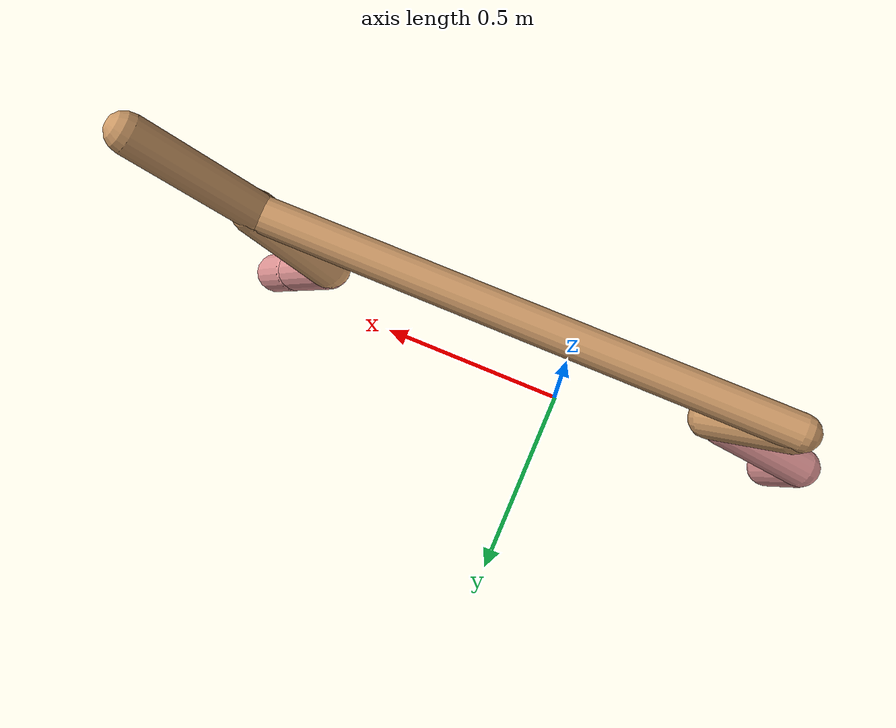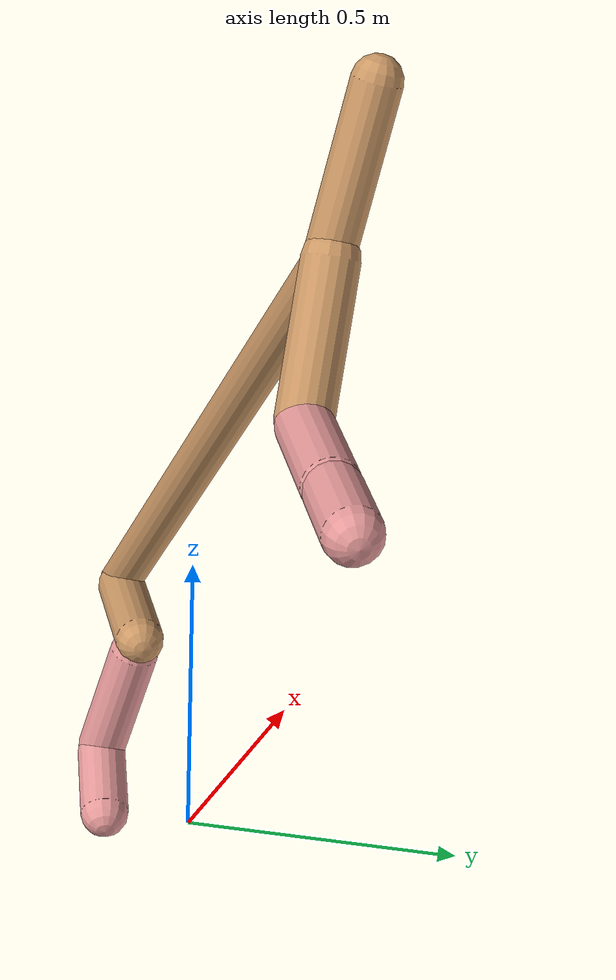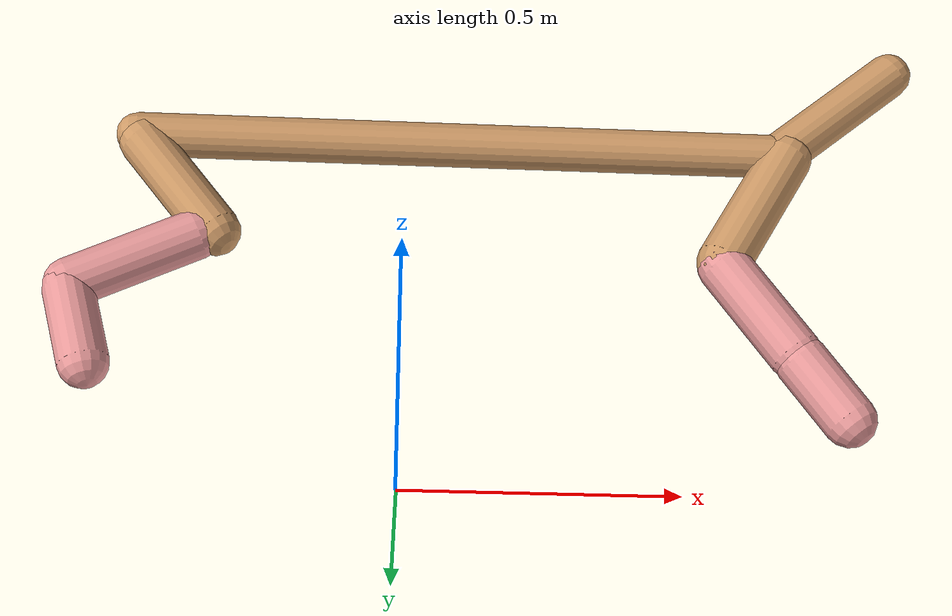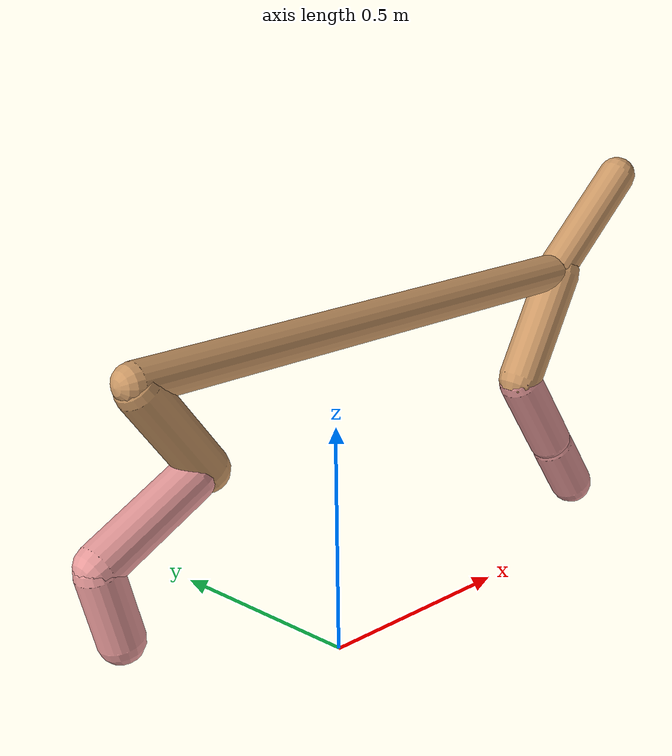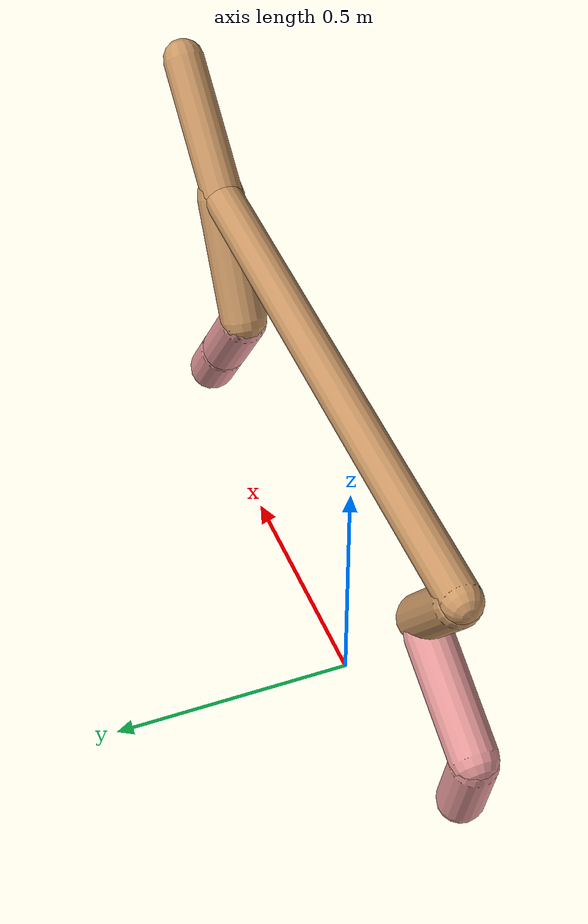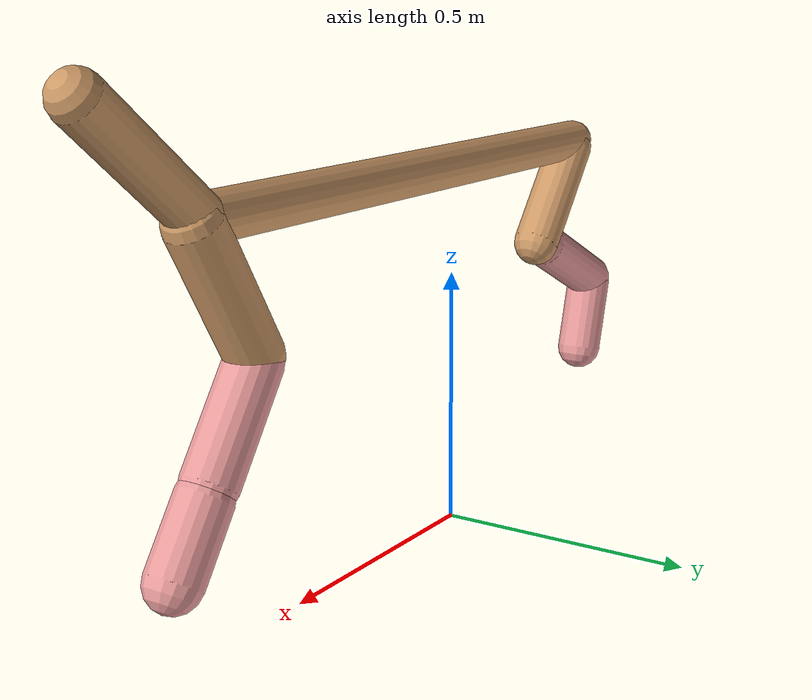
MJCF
<mujoco model="cheetah">
  <compiler angle="radian" coordinate="local" inertiafromgeom="true" settotalmass="14" />
  <default>
    <joint armature=".1" damping=".01" limited="true" solimplimit="0 .8 .03" solreflimit=".02 1" stiffness="8" />
    <geom conaffinity="0" condim="3" contype="1" friction="0.8 .1 .1" rgba="0.8 0.6 .4 1" solimp="0.0 0.8 0.01" solref="0.02 1" />
    <motor ctrllimited="true" ctrlrange="-1 1" />
  </default>
  <size nstack="300000" nuser_geom="1" />
  <option gravity="0 0 -9.81" timestep="0.01" />
  <worldbody>
    <body name="torso" pos="0.0 0.0 0.708021002712197">
      <joint armature="0" axis="1 0 0" damping="0" limited="false" name="ignorex" pos="0 0 0" stiffness="0" type="slide" />
      <joint armature="0" axis="0 0 1" damping="0" limited="false" name="ignorez" pos="0 0 0" stiffness="0" type="slide" />
      <joint armature="0" axis="0 1 0" damping="0" limited="false" name="ignorey" pos="0 0 0" stiffness="0" type="hinge" />
      <geom fromto="-0.5 0.0 0.0 0.7358991207570631 0.0 0.0" name="torso" size="0.04145232799629783" type="capsule" />
      <geom axisangle="0 1 0 .87" name="head" pos="0.8358991207570631 0.0 0.1" size="0.043585233902332 0.15" type="capsule" />

      <body name="bthigh" pos="-.5 0 0">
        <joint axis="0 1 0" damping="6" name="bthigh" pos="0 0 0" range="-.52 1.05" stiffness="240" type="hinge" />
        <geom axisangle="0 1 0 -3.8" name="bthigh" pos="0.08427186070413235 0.0 -0.10955341891537207" size="0.04687078320338255 0.11920393356031812" type="capsule" />
        <body name="bshin" pos="0.1285437214082647 0.0 -0.20910683783074413">
          <joint axis="0 1 0" damping="4.5" name="bshin" pos="0 0 0" range="-.785 .785" stiffness="180" type="hinge" />
          <geom axisangle="0 1 0 -2.03" name="bshin" pos="-0.11613168629880154 0.0 -0.05806584314940077" rgba="0.9 0.6 0.6 1" size="0.04687078320338255 0.12331441402791529" type="capsule" />
          <body name="bfoot" pos="-0.23226337259760307 0.0 -0.11613168629880154">
            <joint axis="0 1 0" damping="3" name="bfoot" pos="0 0 0" range="-.4 .785" stiffness="120" type="hinge" />
            <geom axisangle="0 1 0 -.27" name="bfoot" pos="0.025058869512270807 0.0 -0.08102367808967562" rgba="0.9 0.6 0.6 1" size="0.04687078320338255 0.07727703279082693" type="capsule" />
            <inertial mass="10" />
          </body>
        </body>
      </body>
      <body name="fthigh" pos="0.7358991207570631 0.0 0.0">
        <joint axis="0 1 0" damping="4.5" name="fthigh" pos="0 0 0" range="-1.5 0.8" stiffness="180" type="hinge" />
        <geom axisangle="0 1 0 .52" name="fthigh" pos="-0.07056226596724832 0.0 -0.12096388451528282" size="0.050125726859099926 0.1341158926367387" type="capsule" />
        <body name="fshin" pos="-0.14112453193449664 0.0 -0.24192776903056565">
          <joint axis="0 1 0" damping="3" name="fshin" pos="0 0 0" range="-1.2 1.1" stiffness="120" type="hinge" />
          <geom axisangle="0 1 0 -.6" name="fshin" pos="0.06552071073217286 0.0 -0.09072098409070087" rgba="0.9 0.6 0.6 1" size="0.050125726859099926 0.10688935804131054" type="capsule" />
          <body name="ffoot" pos="0.13104142146434572 0.0 -0.18144196818140174">
            <joint axis="0 1 0" damping="1.5" name="ffoot" pos="0 0 0" range="-3.1 -0.3" stiffness="60" type="hinge" />
            <geom axisangle="0 1 0 -.6" name="ffoot" pos="0.04531759337600384 0.0 -0.07049403414045043" rgba="0.9 0.6 0.6 1" size="0.050125726859099926 0.07058731191407301" type="capsule" />
            <inertial mass="10" />
          </body>
        </body>
      </body>
    </body>
  </worldbody>
  <actuator>
    <motor gear="120" joint="bthigh" name="bthigh" />
    <motor gear="90" joint="bshin" name="bshin" />
    <motor gear="60" joint="bfoot" name="bfoot" />
    <motor gear="120" joint="fthigh" name="fthigh" />
    <motor gear="60" joint="fshin" name="fshin" />
    <motor gear="30" joint="ffoot" name="ffoot" />
  </actuator>
</mujoco>
